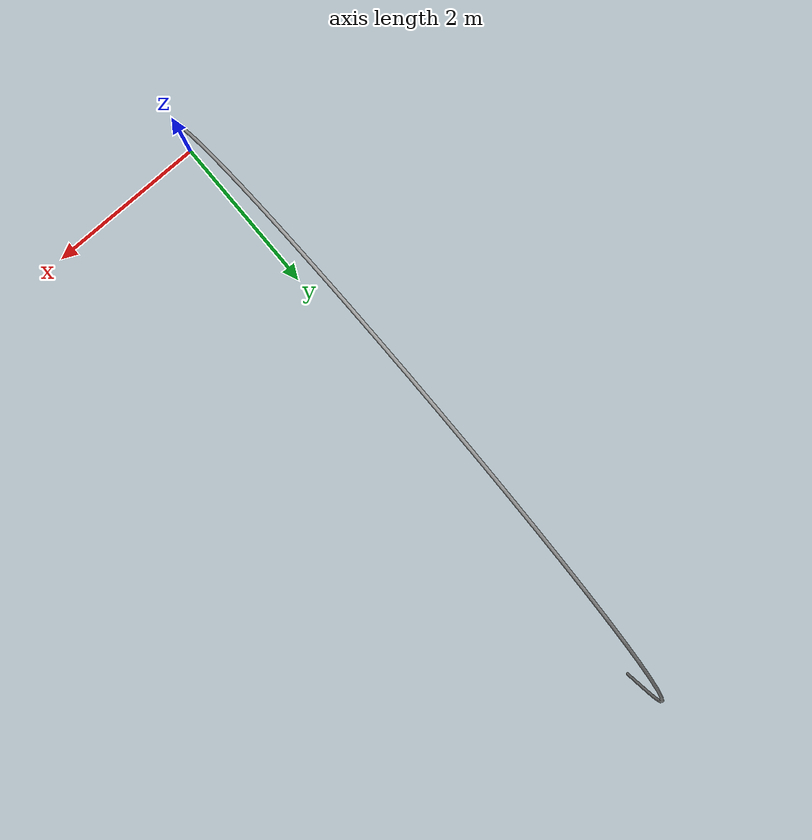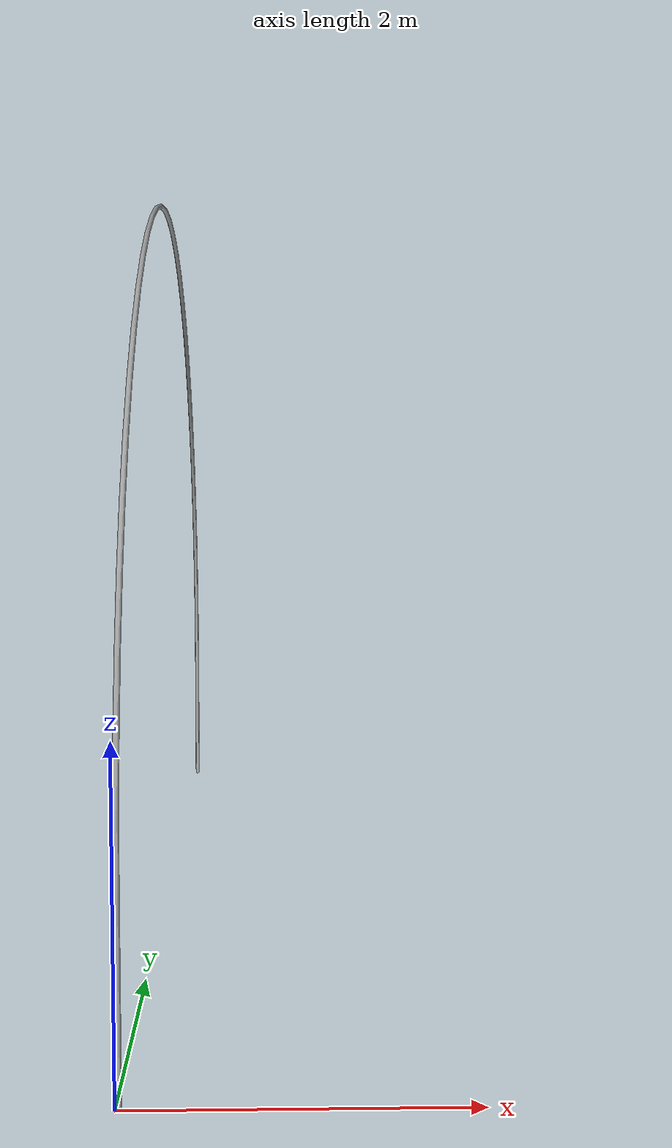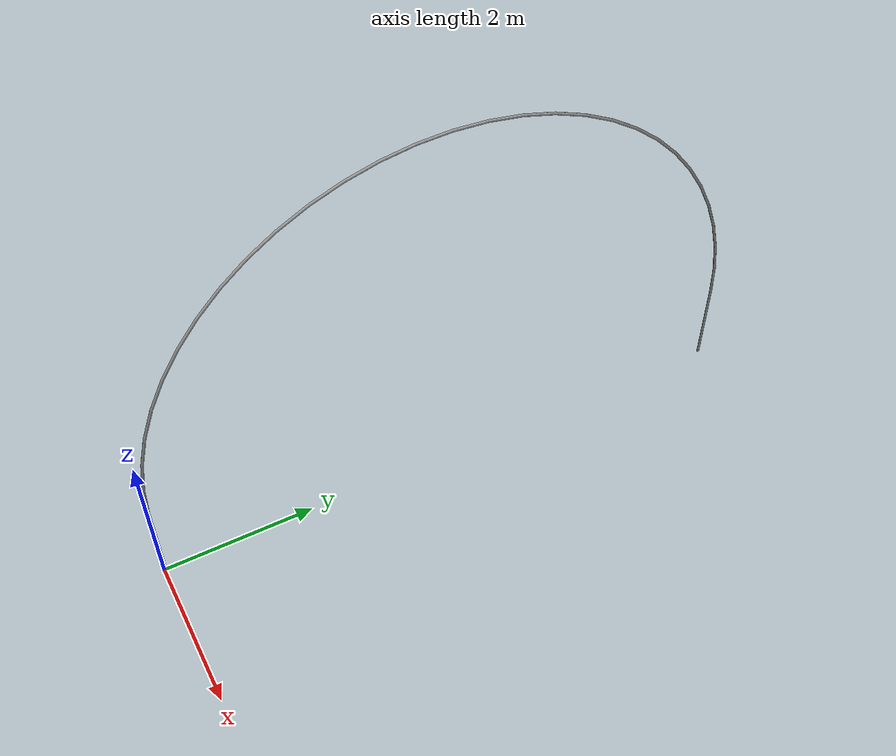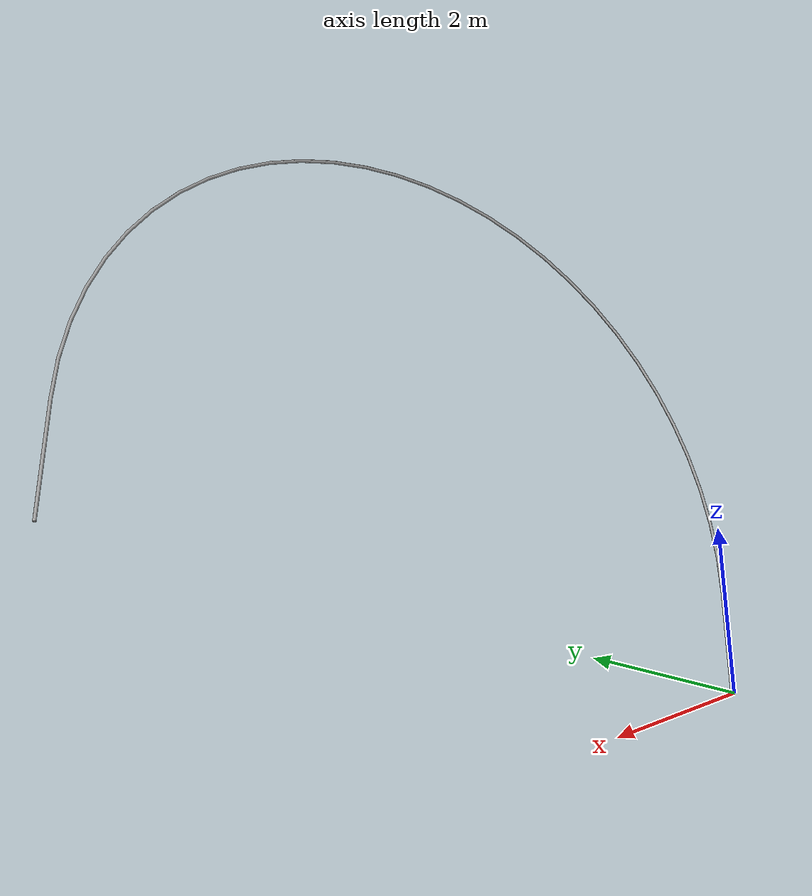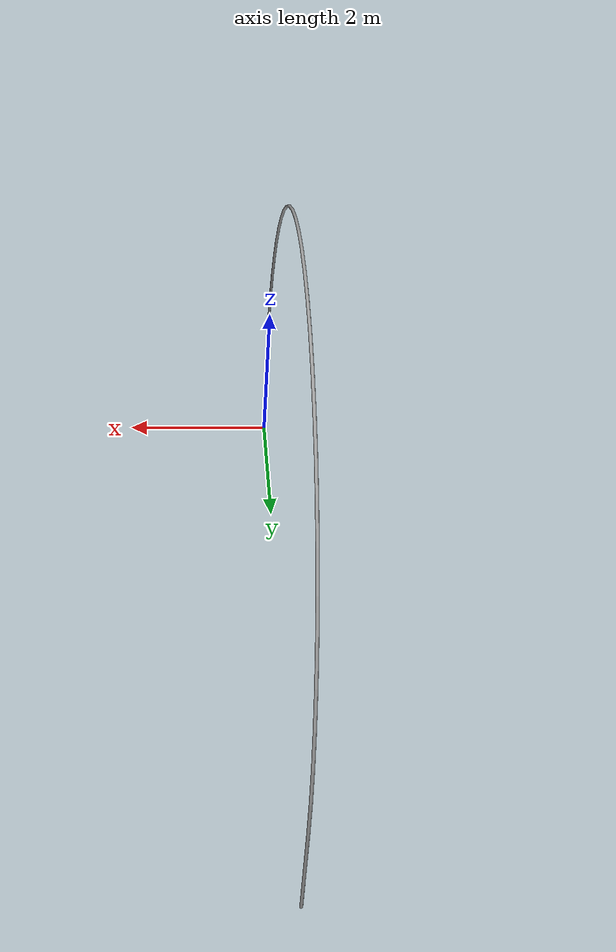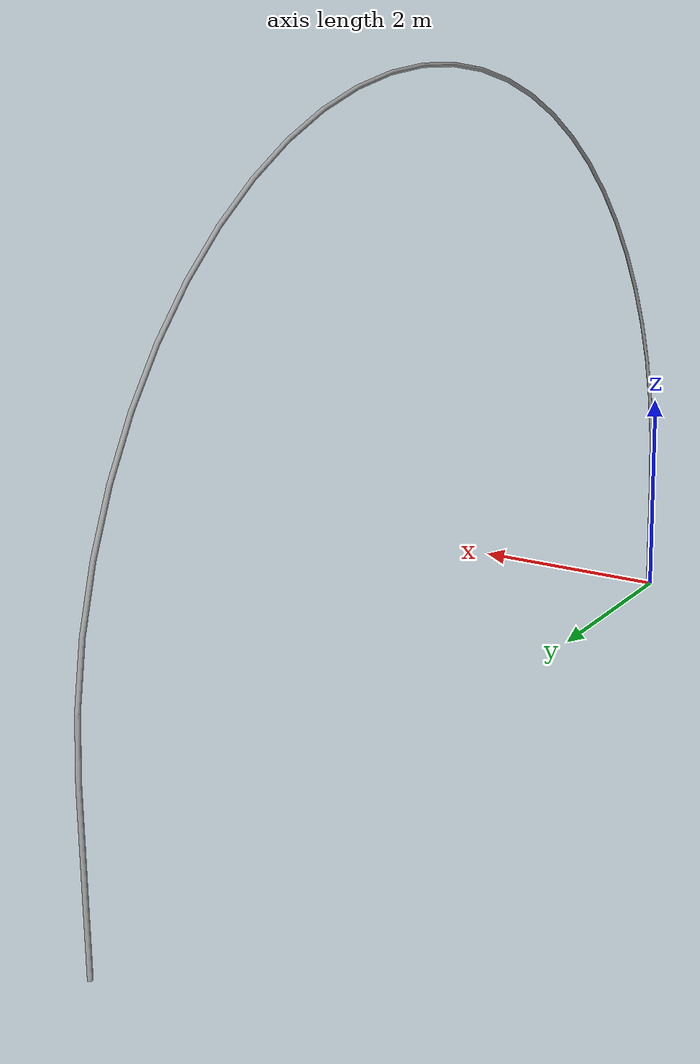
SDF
<?xml version="1.0" ?>
<sdf version="1.5">
    <model name="dummy_arch">
        <static>1</static>
        <pose>0.0 0.0 0.0 1.570796 0.0 1.570796</pose>
        <link name="link">
                <collision name="collision">
                        <geometry>
                            <mesh>
                                <uri>model://dummy_arch/dummy_arch.stl</uri>
                            </mesh>
                        </geometry>
                </collision>
                <visual name="visual">
                        <geometry>
                            <mesh>
                                <uri>model://dummy_arch/dummy_arch.stl</uri>
                            </mesh>
                        </geometry>
                        <material>
                                <script>
                                        <uri>file://media/materials/scripts/gazebo.material</uri>
                                        <name>Gazebo/Grey</name>
                                </script>
                        </material>
                </visual>
        </link>
    </model>
</sdf>
